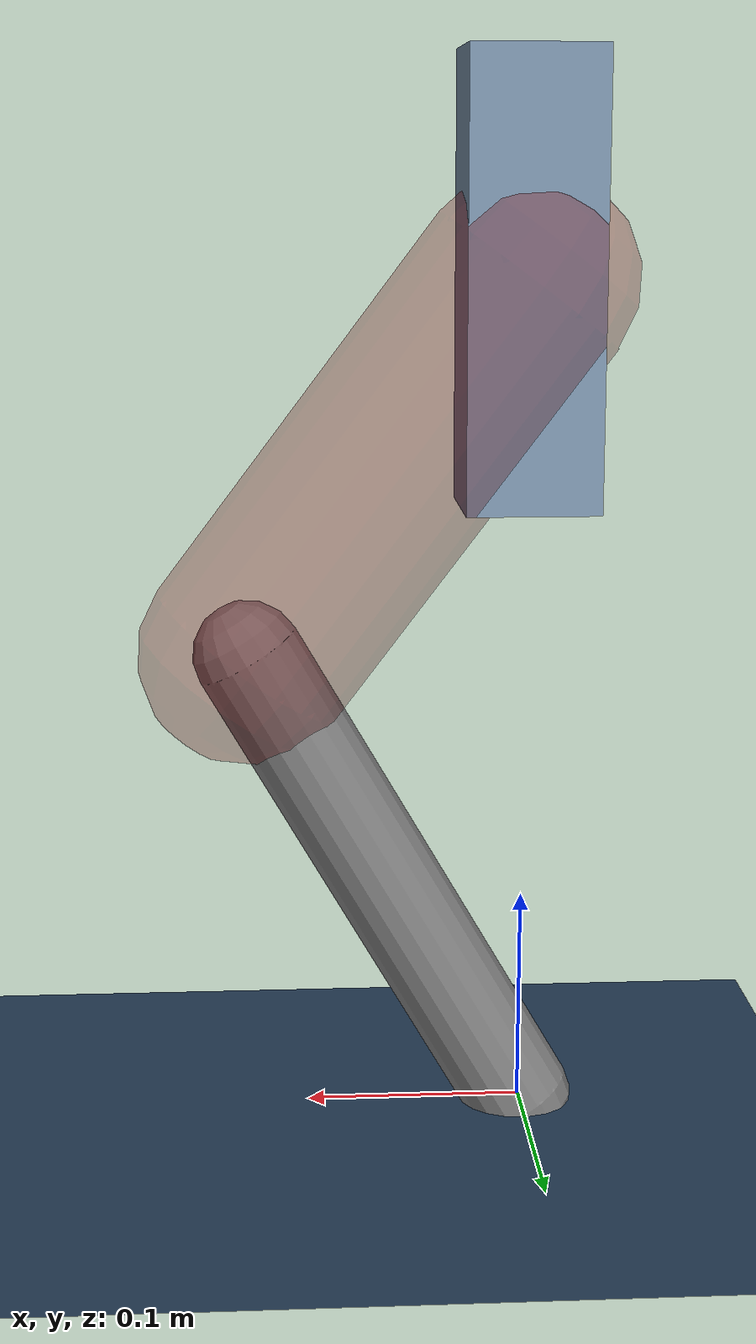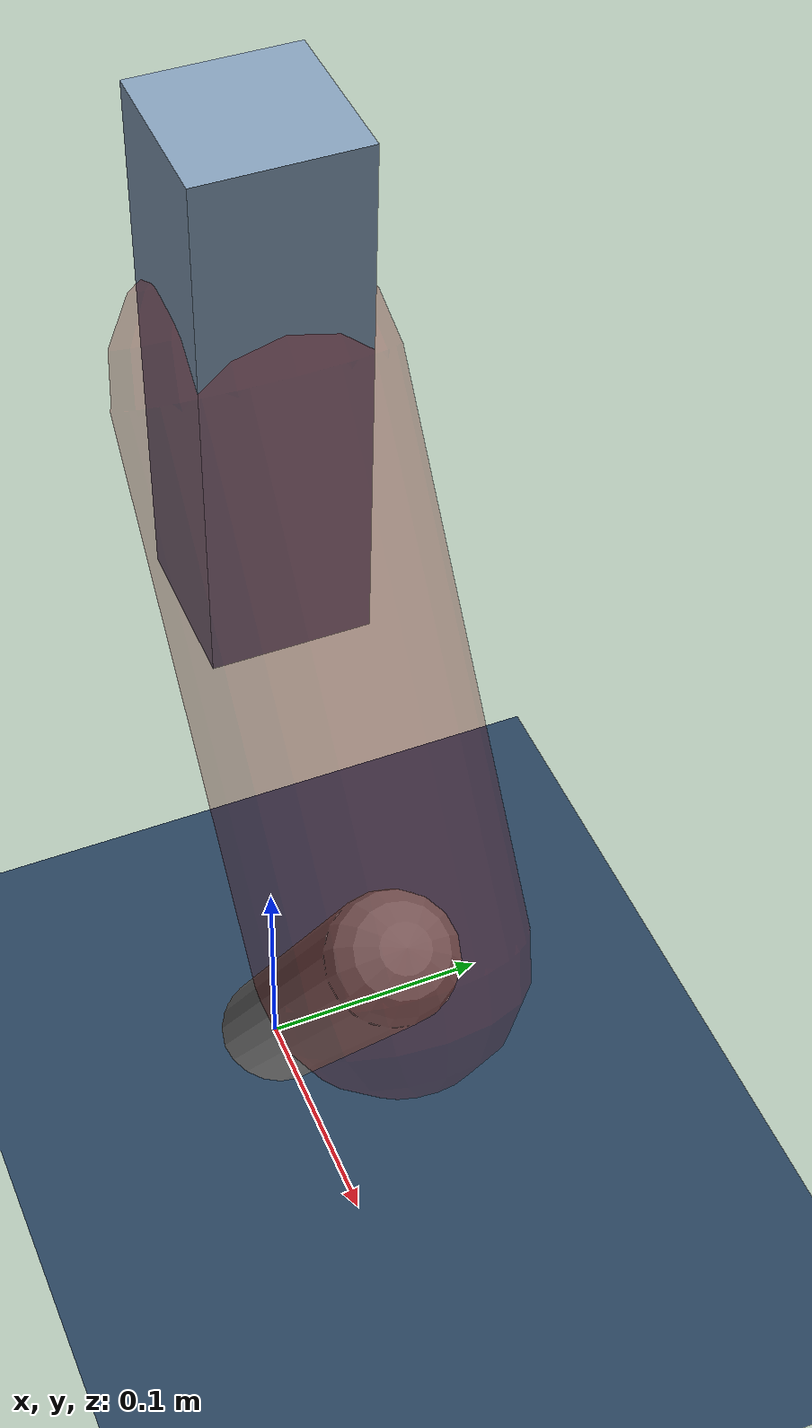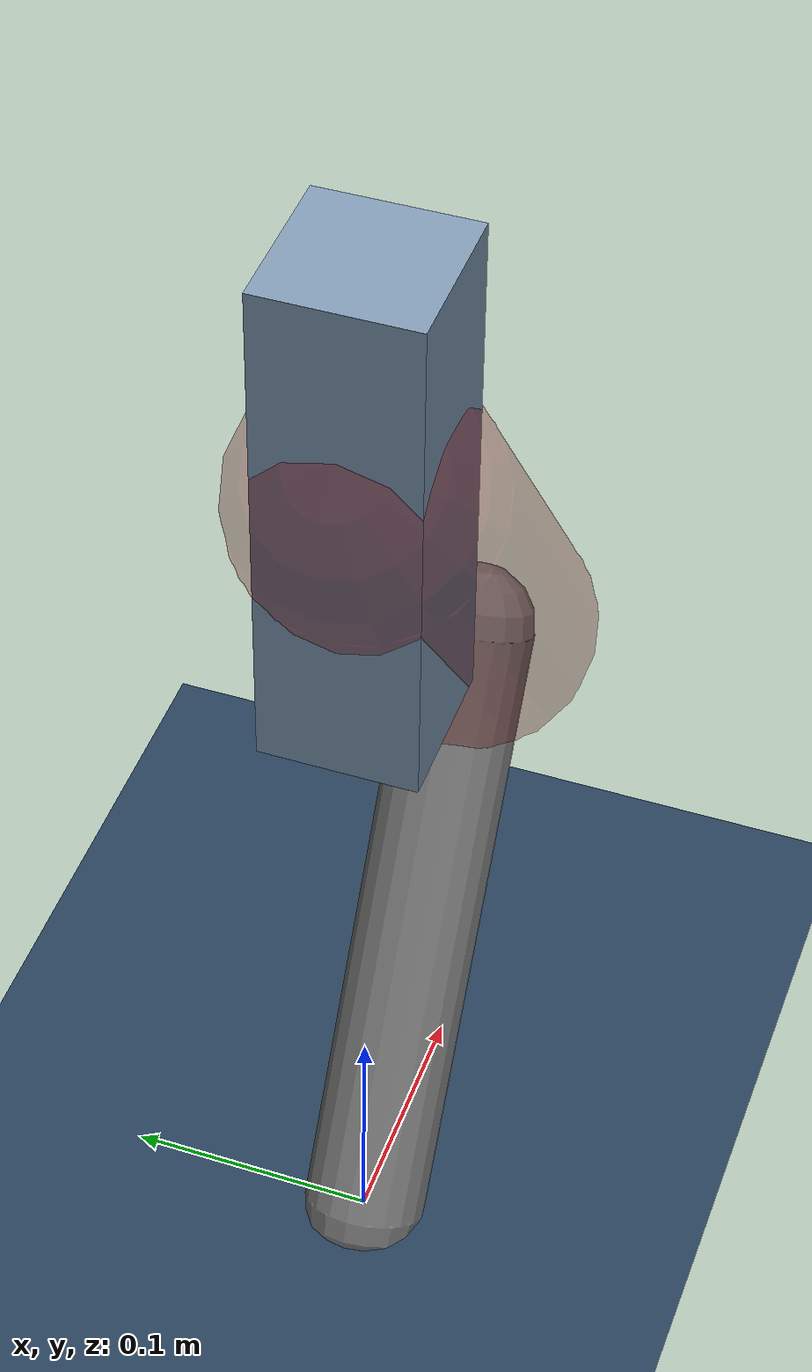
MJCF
<mujoco model="Hopper2D">
	<compiler inertiafromgeom="true" angle="radian" />
	<option timestep="0.001" integrator="implicit" cone="elliptic" solver="Newton" tolerance="1e-10" />

	<default>
		<geom contype="1" conaffinity="1" condim="3" friction="2 0.005 0.0001" solref="0.005 1" />
		<joint limited="true" damping="0.1" />
	</default>

	<asset>
		<texture name="skybox" type="skybox" builtin="gradient" rgb1=".4 .6 .8" rgb2="0 0 0" width="800" height="800" />
		<texture name="grid" type="2d" builtin="checker" rgb1=".1 .2 .3" rgb2=".2 .3 .4" width="300" height="300" mark="edge" markrgb=".2 .3 .4" />
		<material name="ground" texture="grid" texrepeat="1 1" texuniform="true" reflectance="0.1" />
		<material name="leg" rgba="0.5 0.6 0.7 1" />
	</asset>

	<worldbody>

		<geom name="floor" type="plane" size="5 5 0.25" material="ground" />

		<light directional="false" diffuse="0.8 0.8 0.8" specular="0.3 0.3 0.3" pos="0 0 2" dir="0 0 -1" />
		<light mode="targetbodycom" target="base" directional="false" diffuse="0.8 0.8 0.8" specular="0.3 0.3 0.3" pos="0 0 2" dir="0 0 -1" />

		<camera name="fixed" pos="0 -2 1" xyaxes="1 0 0 0 0 1" />
		<camera name="tracking" mode="trackcom" pos="0 -3 1" />

		<body name="root" pos="0 0 0.3840748129216557">
			<joint name="slide_x" type="slide" axis="1 0 0" range="-100 100" />
			<joint name="slide_z" type="slide" axis="0 0 1" range="0 10" />

			<body name="base" pos="0 0 0">
				<geom name="torso" type="box" size="0.03 0.03 0.1" mass="2.691" material="leg" />

				<body name="link1" pos="0 0 0" euler="0 0.9240414350283108 0">
					<joint type="hinge" axis="0 -1 0" pos="0 0 0" name="hinge1" limited="true" range="-3.14 3.14" stiffness="0" damping="0.1" />
					<geom name="thigh" type="capsule" fromto="0 0 0 0.20907995129839774 0 0" size="0.05" rgba="0.5 0 0 0.3" mass="0.7521998782459943" />

					<body name="link2" pos="0.20907995129839774 0 0" euler="0 1.1723524454280707 0">
						<joint type="hinge" axis="0 -1 0" pos="0 0 0" name="hinge2" limited="true" range="-3.14 3.14" stiffness="0" damping="0.1" />
						<geom name="shank" type="capsule" fromto="0 0 0 0.2511142411825003 0 0" size="0.025" mass="0.4434028170642503" />

					</body>
				</body>
			</body>
		</body>
	</worldbody>

	<actuator>
		<motor name="torque1" joint="hinge1" ctrlrange="-116.52675960993096 116.52675960993096" ctrllimited="true" gear="1" />
		<motor name="torque2" joint="hinge2" ctrlrange="-68.19056717278298 68.19056717278298" ctrllimited="true" gear="1" />
	</actuator>
</mujoco>
